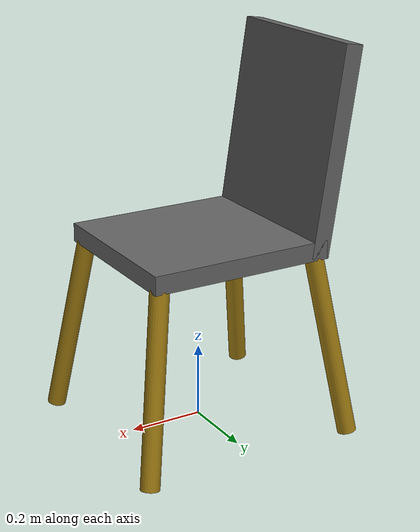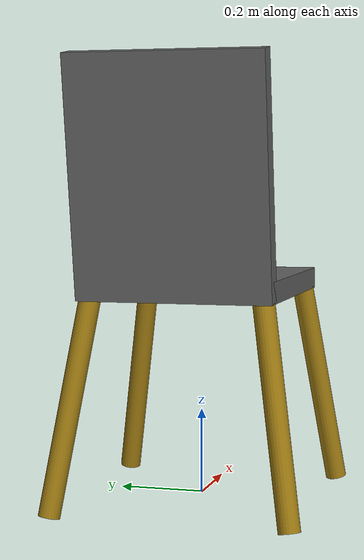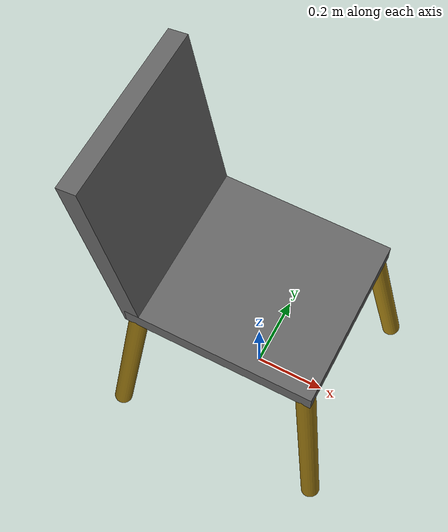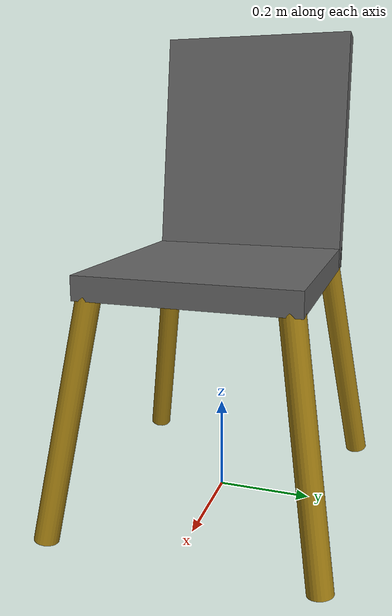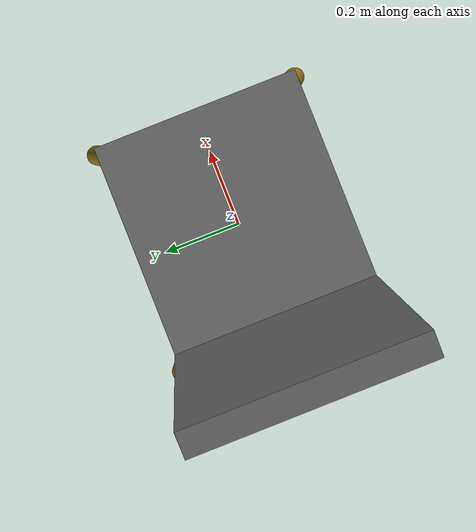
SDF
<?xml version="1.0" ?>
<sdf version="1.8">
  <model name="chair">
    <link name="link">
      <inertial>
        <mass>1.0</mass>
      </inertial>

      <collision name="top">
        <pose>0.0 0.0 0.5 0.0 0.0 0.0</pose>
        <geometry>
          <box>
            <size>0.5 0.45 0.05</size>
          </box>
        </geometry>
      </collision>

      <visual name="top_v">
        <pose>0.0 0.0 0.5 0.0 0.0 0.0</pose>
        <geometry>
          <box>
            <size>0.5 0.45 0.05</size>
          </box>
        </geometry>

        <material>
          <ambient>0.4 0.4 0.4 1</ambient>
          <diffuse>0.4 0.4 0.4 1</diffuse>
        </material>
      </visual>

      <collision name="leg_left_back">
        <pose>-0.26 0.235 0.25 0.15 0.15 0.0</pose>
        <geometry>
          <cylinder>
            <radius>0.025</radius>
            <length>0.53</length>
          </cylinder>
        </geometry>
      </collision>

      <visual name="leg_left_back_v">
        <pose>-0.26 0.235 0.25 0.15 0.15 0.0</pose>
        <geometry>
          <cylinder>
            <radius>0.025</radius>
            <length>0.53</length>
          </cylinder>
        </geometry>

        <material>
          <ambient>0.63 0.49 0.07 1</ambient>
          <diffuse>0.63 0.49 0.07 1</diffuse>
        </material>
      </visual>

      <collision name="leg_left_front">
        <pose>0.26 0.235 0.25 0.15 -0.15 0.0</pose>
        <geometry>
          <cylinder>
            <radius>0.025</radius>
            <length>0.53</length>
          </cylinder>
        </geometry>
      </collision>

      <visual name="leg_left_front_v">
        <pose>0.26 0.235 0.25 0.15 -0.15 0.0</pose>
        <geometry>
          <cylinder>
            <radius>0.025</radius>
            <length>0.53</length>
          </cylinder>
        </geometry>

        <material>
          <ambient>0.63 0.49 0.07 1</ambient>
          <diffuse>0.63 0.49 0.07 1</diffuse>
        </material>
      </visual>

      <collision name="leg_right_back">
        <pose>-0.26 -0.235 0.25 -0.15 0.15 0.0</pose>
        <geometry>
          <cylinder>
            <radius>0.025</radius>
            <length>0.53</length>
          </cylinder>
        </geometry>
      </collision>

      <visual name="leg_right_back_v">
        <pose>-0.26 -0.235 0.25 -0.15 0.15 0.0</pose>
        <geometry>
          <cylinder>
            <radius>0.025</radius>
            <length>0.53</length>
          </cylinder>
        </geometry>

        <material>
          <ambient>0.63 0.49 0.07 1</ambient>
          <diffuse>0.63 0.49 0.07 1</diffuse>
        </material>
      </visual>

      <collision name="leg_right_front">
        <pose>0.26 -0.235 0.25 -0.15 -0.15 0.0</pose>
        <geometry>
          <cylinder>
            <radius>0.025</radius>
            <length>0.53</length>
          </cylinder>
        </geometry>
      </collision>

      <visual name="leg_right_front_v">
        <pose>0.26 -0.235 0.25 -0.15 -0.15 0.0</pose>
        <geometry>
          <cylinder>
            <radius>0.025</radius>
            <length>0.53</length>
          </cylinder>
        </geometry>

        <material>
          <ambient>0.63 0.49 0.07 1</ambient>
          <diffuse>0.63 0.49 0.07 1</diffuse>
        </material>
      </visual>

      <collision name="chair_back">
        <pose>-0.27 0.0 0.75 0.0 -0.15 0.0</pose>
        <geometry>
          <box>
            <size>0.05 0.45 0.55</size>
          </box>
        </geometry>
      </collision>

      <visual name="chair_back_v">
        <pose>-0.27 0.0 0.75 0.0 -0.15 0.0</pose>
        <geometry>
          <box>
            <size>0.05 0.45 0.55</size>
          </box>
        </geometry>

        <material>
          <ambient>0.4 0.4 0.4 1</ambient>
          <diffuse>0.4 0.4 0.4 1</diffuse>
        </material>
      </visual>
    </link>
  </model>
</sdf>
